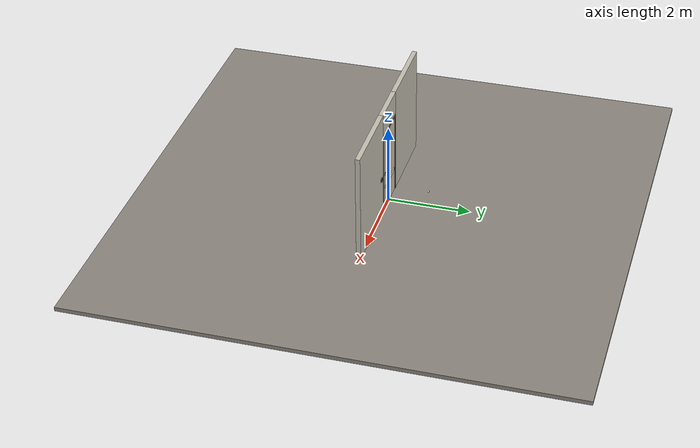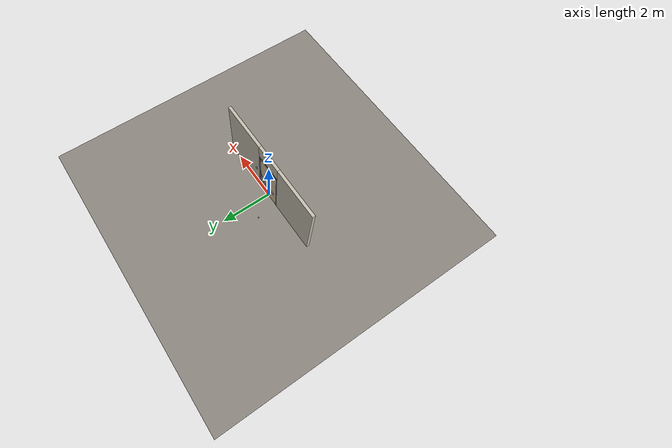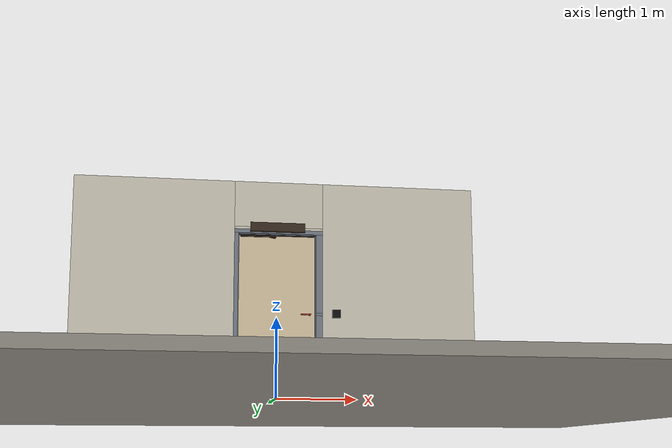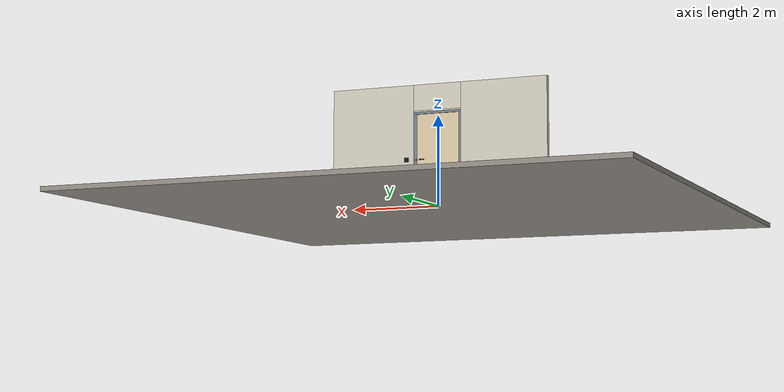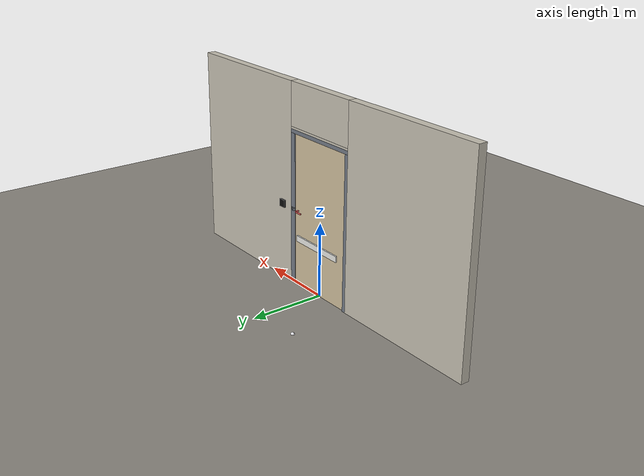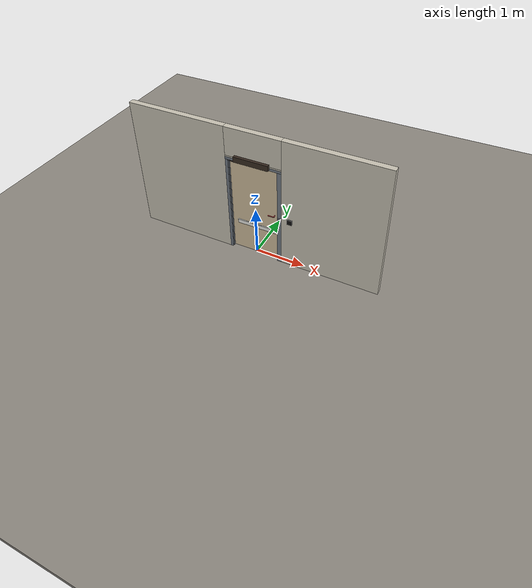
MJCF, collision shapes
<?xml version="1.0" ?>
<mujoco model="db0136_automatic_swing_full">
  <compiler angle="radian" meshdir="../../hardware" texturedir="../../textures" autolimits="true" inertiafromgeom="false"/>
  <option timestep="0.002" integrator="implicitfast" cone="elliptic" impratio="10" noslip_iterations="3">
    <flag multiccd="enable"/>
  </option>
  <size memory="16M"/>
  <default>
    <geom condim="4" solref="0.005 1" solimp="0.95 0.99 0.001"/>
    <joint solreflimit="0.005 1" solimplimit="0.95 0.99 0.001"/>
    <tendon solreflimit="0.005 1"/>
    <equality solref="0.002 1"/>
  </default>
  <visual>
    <headlight ambient="0.4 0.4 0.4" diffuse="0.7 0.7 0.7" specular="0.2 0.2 0.2"/>
    <quality shadowsize="4096"/>
    <map znear="0.01" zfar="60"/>
  </visual>
  <asset>
    <mesh name="hinge_e22b26c0c1" file="hinge_e22b26c0c1.obj"/>
    <mesh name="hinge_jamb_e1d088f8dc" file="hinge_jamb_e1d088f8dc.obj"/>
    <mesh name="lever_6268dcb28c" file="lever_6268dcb28c.obj"/>
    <material name="mat_floor" rgba="0.55 0.53 0.5 1" specular="0.2" shininess="0.15" reflectance="0"/>
    <material name="mat_wall" rgba="0.78 0.76 0.7 1" specular="0.2" shininess="0.1" reflectance="0"/>
    <material name="mat_leaf" rgba="0.82 0.75 0.62 1" specular="0.23" shininess="0.31" reflectance="0.02"/>
    <material name="mat_hinge" rgba="0.65 0.66 0.68 1" specular="0.74" shininess="0.5" reflectance="0.36"/>
    <material name="mat_op_stainless" rgba="0.75 0.76 0.77 1" specular="0.8" shininess="0.65" reflectance="0.4"/>
    <material name="mat_trim" rgba="0.85 0.66 0.3 1" specular="0.8" shininess="0.75" reflectance="0.4"/>
    <material name="mat_bolt" rgba="0.85 0.66 0.3 1" specular="0.8" shininess="0.75" reflectance="0.4"/>
    <material name="mat_frame" rgba="0.45 0.48 0.52 1" specular="0.32" shininess="0.6" reflectance="0.08"/>
    <material name="mat_seal" rgba="0.1 0.1 0.1 1" specular="0.2" shininess="0.1" reflectance="0"/>
    <material name="mat_closer" rgba="0.22 0.17 0.13 1" specular="0.8" shininess="0.6" reflectance="0.4"/>
    <material name="mat_bumper" rgba="0.92 0.92 0.9 1" specular="0.2" shininess="0.6" reflectance="0"/>
    <material name="mat_wallreader" rgba="0.05 0.05 0.05 1" specular="0.38" shininess="0.3" reflectance="0.12"/>
    <material name="mat_stop" rgba="0.9 0.9 0.92 1" specular="0.8" shininess="0.9" reflectance="0.4"/>
    <texture name="skybox" type="skybox" builtin="gradient" rgb1="0.6 0.7 0.85" rgb2="0.9 0.92 0.95" width="256" height="256"/>
  </asset>
  <worldbody>
    <light name="sun" pos="1.5 -2.5 4" dir="-0.3 0.5 -0.8" directional="true" diffuse="0.8 0.8 0.8" specular="0.3 0.3 0.3" castshadow="true"/>
    <light name="fill" pos="-1.5 2.5 3" dir="0.3 -0.5 -0.7" directional="true" diffuse="0.35 0.35 0.4" castshadow="false"/>
    <camera name="robot_view" pos="0 -2.570688 1.734312" xyaxes="1 0 0 0 0.26963 0.962964" fovy="52"/>
    <camera name="far_view" pos="0 2.513687 1.734312" xyaxes="-1 0 0 0 -0.26963 0.962964" fovy="52"/>
    <camera name="iso" pos="1.932062 -2.163938 2.141063" xyaxes="0.741536 0.670913 0 -0.242917 0.268487 0.932151" fovy="46"/>
    <camera name="detail_handle" pos="0.496 -0.877 1.32" xyaxes="0.97561 0.219512 0 -0.070934 0.315262 0.94635" fovy="38"/>
    <geom name="floor" type="box" size="6 6 0.05" pos="0 0 -0.05" material="mat_floor" group="0" contype="1" conaffinity="1" friction="0.8 0.005 0.0001" density="2400"/>
    <geom name="wall_left" type="box" size="0.982 0.0575 1.35" pos="-1.518 -0.0285 1.35" material="mat_wall" group="0" contype="1" conaffinity="1" friction="0.6 0.005 0.0001" density="800"/>
    <geom name="wall_right" type="box" size="0.967 0.0575 1.35" pos="1.533 -0.0285 1.35" material="mat_wall" group="0" contype="1" conaffinity="1" friction="0.6 0.005 0.0001" density="800"/>
    <geom name="wall_header" type="box" size="0.551 0.0575 0.2875" pos="0.015 -0.0285 2.4125" material="mat_wall" group="0" contype="1" conaffinity="1" friction="0.6 0.005 0.0001" density="800"/>
    <geom name="hinge_0_jamb" type="mesh" mesh="hinge_jamb_e1d088f8dc" pos="-0.483 0.029 0.259" quat="0 1 0 0" material="mat_hinge" group="1" contype="0" conaffinity="0" density="7850"/>
    <geom name="hinge_1_jamb" type="mesh" mesh="hinge_jamb_e1d088f8dc" pos="-0.483 0.029 1.025" quat="0 1 0 0" material="mat_hinge" group="1" contype="0" conaffinity="0" density="7850"/>
    <geom name="hinge_2_jamb" type="mesh" mesh="hinge_jamb_e1d088f8dc" pos="-0.483 0.029 1.861" quat="0 1 0 0" material="mat_hinge" group="1" contype="0" conaffinity="0" density="7850"/>
    <geom name="jamb_hinge" type="box" size="0.025 0.0575 1.0225" pos="-0.511 -0.0285 1.0225" material="mat_frame" group="0" contype="1" conaffinity="1" friction="0.6 0.005 0.0001" density="300"/>
    <geom name="strike_1040_wall_n" type="box" size="0.04 0.039075 0.0167" pos="0.526 -0.046925 1.04" material="mat_frame" group="0" contype="1" conaffinity="1" friction="0.6 0.005 0.0001" density="300"/>
    <geom name="strike_1040_wall_p" type="box" size="0.04 0.008 0.0167" pos="0.526 0.01585 1.04" material="mat_frame" group="0" contype="1" conaffinity="1" friction="0.6 0.005 0.0001" density="300"/>
    <geom name="strike_1040_ramp" type="box" size="0.04 0.01649 0.0167" pos="0.529236 0.022234 1.04" quat="0.977148 0 0 -0.212558" material="mat_frame" group="0" contype="1" conaffinity="1" friction="0.12 0.005 0.0001" density="300"/>
    <geom name="strike_1040_back" type="box" size="0.03165 0.00785 0.0167" pos="0.53435 0 1.04" material="mat_frame" group="0" contype="1" conaffinity="1" friction="0.6 0.005 0.0001" density="300"/>
    <geom name="jamb_strike_0" type="box" size="0.04 0.0575 0.51165" pos="0.526 -0.0285 0.51165" material="mat_frame" group="0" contype="1" conaffinity="1" friction="0.6 0.005 0.0001" density="300"/>
    <geom name="jamb_strike_1" type="box" size="0.04 0.0575 0.49415" pos="0.526 -0.0285 1.55085" material="mat_frame" group="0" contype="1" conaffinity="1" friction="0.6 0.005 0.0001" density="300"/>
    <geom name="jamb_head" type="box" size="0.551 0.0575 0.025" pos="0.015 -0.0285 2.07" material="mat_frame" group="0" contype="1" conaffinity="1" friction="0.6 0.005 0.0001" density="300"/>
    <geom name="head_stud" type="box" size="0.551 0.0575 0.015" pos="0.015 -0.0285 2.11" material="mat_wall" group="0" contype="1" conaffinity="1" friction="0.6 0.005 0.0001" density="500"/>
    <geom name="stop_hinge" type="box" size="0.0055 0.016 1.0225" pos="-0.4805 -0.0385 1.0225" material="mat_frame" group="0" contype="1" conaffinity="1" friction="0.6 0.005 0.0001" density="300"/>
    <geom name="stop_strike" type="box" size="0.0055 0.016 1.0225" pos="0.4805 -0.0385 1.0225" material="mat_frame" group="0" contype="1" conaffinity="1" friction="0.6 0.005 0.0001" density="300"/>
    <geom name="stop_head" type="box" size="0.486 0.016 0.0055" pos="0 -0.0385 2.0395" material="mat_frame" group="0" contype="1" conaffinity="1" friction="0.6 0.005 0.0001" density="300"/>
    <geom name="seal_hinge" type="box" size="0.004 0.002 1.0225" pos="-0.483 -0.024 1.0225" material="mat_seal" group="1" contype="0" conaffinity="0" density="1100"/>
    <geom name="seal_strike" type="box" size="0.004 0.002 1.0225" pos="0.483 -0.024 1.0225" material="mat_seal" group="1" contype="0" conaffinity="0" density="1100"/>
    <geom name="seal_head" type="box" size="0.466 0.002 0.008" pos="0 -0.024 2.033" material="mat_seal" group="1" contype="0" conaffinity="0" density="1100"/>
    <geom name="auto_operator_header" type="box" size="0.34 0.055 0.055" pos="0 -0.087 2.116" material="mat_closer" group="0" contype="1" conaffinity="1" friction="0.6 0.005 0.0001" density="1500"/>
    <geom name="wave_sensor_n" type="box" size="0.05 0.012 0.05" pos="0.736 -0.098 1.05" material="mat_wallreader" group="0" contype="1" conaffinity="1" friction="0.6 0.005 0.0001" density="1000"/>
    <geom name="wave_sensor_p" type="box" size="0.05 0.012 0.05" pos="0.736 0.041 1.05" material="mat_wallreader" group="0" contype="1" conaffinity="1" friction="0.6 0.005 0.0001" density="1000"/>
    <geom name="wave_sensor_p_pad" type="box" size="0.04 0.058 0.04" pos="0.736 -0.0285 1.05" material="mat_wallreader" group="1" contype="0" conaffinity="0" density="7850"/>
    <geom name="floor_stop_dome" type="sphere" size="0.025" pos="-0.574413 0.844386 0" material="mat_stop" group="0" contype="1" conaffinity="1" friction="0.6 0.005 0.0001" density="7000"/>
    <site name="approach_point" pos="0 -1.5 0" quat="1 0 0 0" size="0.05" rgba="0.2 0.9 0.2 0.5" group="4"/>
    <site name="goal_point" pos="0 1.5 0" quat="1 0 0 0" size="0.05" rgba="0.2 0.9 0.2 0.5" group="4"/>
    <site name="door_plane_center" pos="0 0 1.0225" quat="1 0 0 0" size="0.02" rgba="0.2 0.9 0.2 0.5" group="4"/>
    <body name="leaf" pos="-0.486 0 0">
      <inertial pos="0.479437 -0.000162 1.012315" mass="58.760704" quat="0.501924 0.502831 0.497755 -0.497468" diaginertia="4.60389716 19.884620656 24.460541781"/>
      <joint name="leaf_hinge" type="hinge" axis="0 0 1" pos="0.003 0.029 0" limited="true" range="0 1.658063" solreflimit="0.02 1" damping="15.318237" frictionloss="2.810593" stiffness="15.342537" springref="-1.864099" armature="0.02"/>
      <geom name="leaf_slab" type="box" size="0.4825 0.022 1.016" pos="0.4855 0 1.025" material="mat_leaf" group="0" contype="1" conaffinity="1" friction="0.4 0.005 0.0001" density="1"/>
      <geom name="hinge_0" type="mesh" mesh="hinge_e22b26c0c1" pos="0.003 0.029 0.259" quat="0 1 0 0" material="mat_hinge" group="1" contype="0" conaffinity="0" density="7850"/>
      <geom name="hinge_1" type="mesh" mesh="hinge_e22b26c0c1" pos="0.003 0.029 1.025" quat="0 1 0 0" material="mat_hinge" group="1" contype="0" conaffinity="0" density="7850"/>
      <geom name="hinge_2" type="mesh" mesh="hinge_e22b26c0c1" pos="0.003 0.029 1.861" quat="0 1 0 0" material="mat_hinge" group="1" contype="0" conaffinity="0" density="7850"/>
      <geom name="leaf_latch_bolt_faceplate" type="box" size="0.0006 0.01235 0.0267" pos="0.9674 0 1.04" material="mat_bolt" group="1" contype="0" conaffinity="0" density="8500"/>
      <geom name="auto_operator_arm" type="box" size="0.22 0.008 0.008" pos="0.25 -0.052 2.012" material="mat_closer" group="1" contype="0" conaffinity="0" density="2700"/>
      <geom name="auto_operator_arm_shoe" type="box" size="0.03 0.016 0.014" pos="0.44 -0.038 2.012" material="mat_closer" group="1" contype="0" conaffinity="0" density="2700"/>
      <geom name="bumper_rail_n" type="box" size="0.3975 0.01 0.04" pos="0.5205 -0.032 0.659" material="mat_bumper" group="0" contype="1" conaffinity="1" friction="0.6 0.005 0.0001" density="1200"/>
      <geom name="bumper_rail_p" type="box" size="0.3975 0.01 0.04" pos="0.5205 0.032 0.659" material="mat_bumper" group="0" contype="1" conaffinity="1" friction="0.6 0.005 0.0001" density="1200"/>
      <site name="leaf_edge_mid" pos="0.968 0 1.016" quat="1 0 0 0" size="0.02" rgba="0.2 0.9 0.2 0.5" group="4"/>
      <body name="leaf_handle" pos="0.898 0 1.04">
        <inertial pos="-0.035149 0 0" mass="1.038236" quat="0 0.707107 0.707107 0" diaginertia="0.002348364 0.00382535 0.005606687"/>
        <joint name="leaf_handle_hinge" type="hinge" axis="0 -1 0" limited="true" range="0 0.96" damping="0.255791" frictionloss="0.05" stiffness="1.2" springref="-0.583333" armature="0.01"/>
        <geom name="leaf_handle_spindle" type="cylinder" size="0.006 0.03" pos="0 0 0" quat="0.707107 -0.707107 0 0" material="mat_op_stainless" group="1" contype="0" conaffinity="0" density="7850"/>
        <geom name="leaf_handle_lever_n" type="mesh" mesh="lever_6268dcb28c" pos="0 -0.022 0" quat="0.707107 0.707107 0 0" material="mat_op_stainless" group="1" contype="0" conaffinity="0" density="3000"/>
        <geom name="leaf_handle_lever_col_n" type="capsule" size="0.0095 0.0505" pos="-0.06 -0.077 0" quat="0.707107 0 -0.707107 0" material="mat_op_stainless" group="3" contype="1" conaffinity="1" rgba="0.8 0.3 0.3 0.25" friction="0.7 0.01 0.0001" density="3000"/>
        <geom name="leaf_handle_hub_col_n" type="cylinder" size="0.012 0.022" pos="0 -0.052 0" quat="0.707107 -0.707107 0 0" material="mat_op_stainless" group="3" contype="1" conaffinity="1" rgba="0.8 0.3 0.3 0.25" friction="0.6 0.005 0.0001" density="3000"/>
        <geom name="leaf_handle_lever_p" type="mesh" mesh="lever_6268dcb28c" pos="0 0.022 0" quat="-0.707107 0.707107 0 0" material="mat_op_stainless" group="1" contype="0" conaffinity="0" density="3000"/>
        <geom name="leaf_handle_lever_col_p" type="capsule" size="0.0095 0.0505" pos="-0.06 0.077 0" quat="0.707107 0 -0.707107 0" material="mat_op_stainless" group="3" contype="1" conaffinity="1" rgba="0.8 0.3 0.3 0.25" friction="0.7 0.01 0.0001" density="3000"/>
        <geom name="leaf_handle_hub_col_p" type="cylinder" size="0.012 0.022" pos="0 0.052 0" quat="0.707107 -0.707107 0 0" material="mat_op_stainless" group="3" contype="1" conaffinity="1" rgba="0.8 0.3 0.3 0.25" friction="0.6 0.005 0.0001" density="3000"/>
        <site name="leaf_handle_grip_n" pos="-0.096 -0.077 0" quat="1 0 0 0" size="0.012" rgba="0.2 0.9 0.2 0.5" group="4"/>
        <site name="leaf_handle_grip_p" pos="-0.096 0.077 0" quat="1 0 0 0" size="0.012" rgba="0.2 0.9 0.2 0.5" group="4"/>
      </body>
      <body name="leaf_latch_bolt" pos="0.968 0 1.04">
        <inertial pos="-0.00865 0 0" mass="0.041419" quat="0.92388 -0.382683 0 0" diaginertia="0.000000798 0.000005598 0.000005598"/>
        <joint name="leaf_latch_bolt_slide" type="slide" axis="-1 0 0" limited="true" range="0 0.0127" damping="2" frictionloss="0.3" stiffness="300" springref="-0.008333" armature="0.1"/>
        <geom name="leaf_latch_bolt_capsule" type="capsule" size="0.00635 0.015" pos="-0.00865 0 0" quat="0.707107 0 0.707107 0" material="mat_bolt" group="0" contype="1" conaffinity="1" friction="0.2 0.005 0.0001" density="8500"/>
      </body>
    </body>
  </worldbody>
  <tendon>
    <fixed name="leaf_latch_bolt_coupling" limited="true" range="0 10">
      <joint joint="leaf_latch_bolt_slide" coef="1"/>
      <joint joint="leaf_handle_hinge" coef="-0.013956"/>
    </fixed>
  </tendon>
  <actuator>
    <position name="swing_operator" joint="leaf_hinge" kp="150" kv="40" forcerange="-60 60" ctrlrange="0 1.6"/>
  </actuator>
  <sensor>
    <jointpos name="leaf_hinge_pos" joint="leaf_hinge"/>
    <jointvel name="leaf_hinge_vel" joint="leaf_hinge"/>
    <jointpos name="leaf_handle_hinge_pos" joint="leaf_handle_hinge"/>
    <jointvel name="leaf_handle_hinge_vel" joint="leaf_handle_hinge"/>
    <jointpos name="leaf_latch_bolt_slide_pos" joint="leaf_latch_bolt_slide"/>
    <jointvel name="leaf_latch_bolt_slide_vel" joint="leaf_latch_bolt_slide"/>
  </sensor>
</mujoco>
